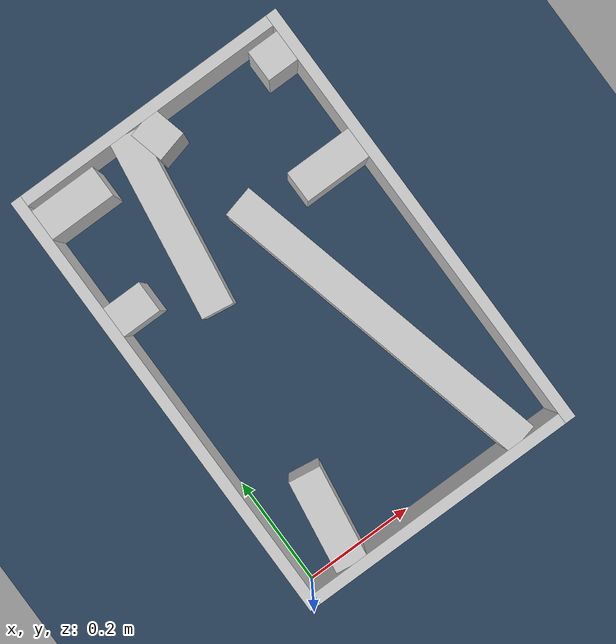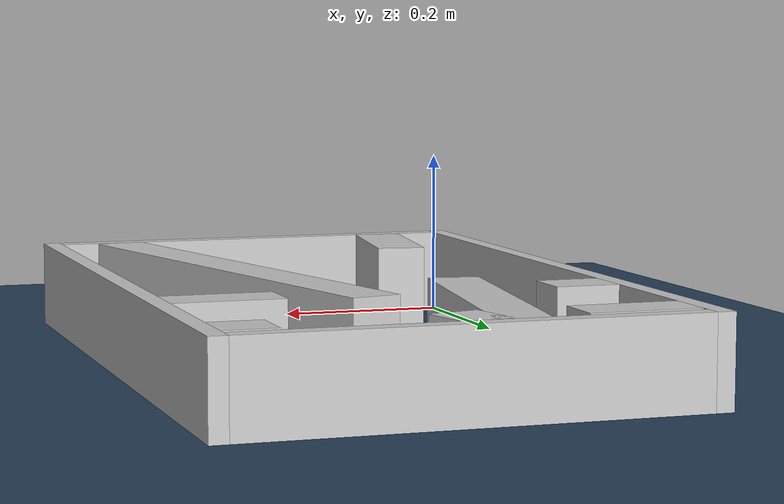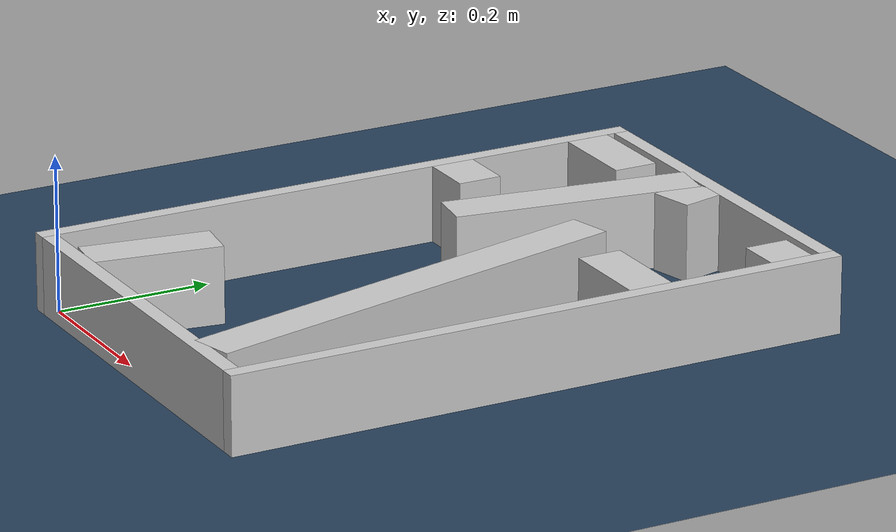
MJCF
<?xml version="1.0" ?>
<mujoco model="generated_real_template">
  <compiler angle="degree"/>
  <option timestep="0.002" integrator="implicitfast" iterations="100" cone="elliptic"/>
  <default>
    <geom density="1"/>
  </default>
  <asset>
    <texture builtin="gradient" height="3072" rgb1="0.3 0.5 0.7" rgb2="0 0 0" type="skybox" width="512"/>
    <texture builtin="checker" height="300" mark="edge" markrgb="0.8 0.8 0.8" name="groundplane" rgb1="0.2 0.3 0.4" rgb2="0.1 0.2 0.3" type="2d" width="300"/>
    <material name="groundplane" reflectance="0.2" texrepeat="5 5" texture="groundplane" texuniform="true"/>
  </asset>
  <worldbody>
    <light dir="0 0 -1" directional="true" pos="0 0 1.5"/>
    <geom name="floor" type="plane" condim="4" friction="0.5 0.005 0.001" material="groundplane" size="0 0 0.05"/>
    <body name="walls">
      <geom name="wall_boundary_left" type="box" condim="4" friction="1.0 0.005 0.0001" rgba="0.8 0.8 0.8 1" pos="-0.010000 0.387500 0.050000" euler="0 0 0.000000" size="0.010000 0.407500 0.050000"/>
      <geom name="wall_boundary_right" type="box" condim="4" friction="1.0 0.005 0.0001" rgba="0.8 0.8 0.8 1" pos="0.500000 0.387500 0.050000" euler="0 0 0.000000" size="0.010000 0.407500 0.050000"/>
      <geom name="wall_boundary_bottom" type="box" condim="4" friction="1.0 0.005 0.0001" rgba="0.8 0.8 0.8 1" pos="0.245000 -0.010000 0.050000" euler="0 0 0.000000" size="0.245000 0.010000 0.050000"/>
      <geom name="wall_boundary_top" type="box" condim="4" friction="1.0 0.005 0.0001" rgba="0.8 0.8 0.8 1" pos="0.245000 0.785000 0.050000" euler="0 0 0.000000" size="0.245000 0.010000 0.050000"/>
      <geom name="wall_inner_1_1" type="box" condim="4" friction="1.0 0.005 0.0001" rgba="0.8 0.8 0.8 1" pos="0.236492 0.744721 0.050000" euler="0 0 -76.255126" size="0.031172 0.028500 0.050000"/>
      <geom name="wall_inner_1_2" type="box" condim="4" friction="1.0 0.005 0.0001" rgba="0.8 0.8 0.8 1" pos="0.347532 0.290762 0.050000" euler="0 0 -76.255126" size="0.299334 0.028500 0.050000"/>
      <geom name="wall_inner_2_1" type="box" condim="4" friction="1.0 0.005 0.0001" rgba="0.8 0.8 0.8 1" pos="0.169736 0.616301 0.050000" euler="0 0 -98.462213" size="0.160445 0.028500 0.050000"/>
      <geom name="wall_inner_2_2" type="box" condim="4" friction="1.0 0.005 0.0001" rgba="0.8 0.8 0.8 1" pos="0.090223 0.081861 0.050000" euler="0 0 -98.462213" size="0.082762 0.028500 0.050000"/>
      <geom name="wall_inner_3_1" type="box" condim="4" friction="1.0 0.005 0.0001" rgba="0.8 0.8 0.8 1" pos="0.060643 0.736213 0.050000" euler="0 0 0.000000" size="0.060643 0.028500 0.050000"/>
      <geom name="wall_inner_3_2" type="box" condim="4" friction="1.0 0.005 0.0001" rgba="0.8 0.8 0.8 1" pos="0.461111 0.736213 0.050000" euler="0 0 0.000000" size="0.028889 0.028500 0.050000"/>
      <geom name="wall_inner_4_1" type="box" condim="4" friction="1.0 0.005 0.0001" rgba="0.8 0.8 0.8 1" pos="0.035828 0.542175 0.050000" euler="0 0 0.000000" size="0.035828 0.028500 0.050000"/>
      <geom name="wall_inner_4_2" type="box" condim="4" friction="1.0 0.005 0.0001" rgba="0.8 0.8 0.8 1" pos="0.428915 0.542175 0.050000" euler="0 0 0.000000" size="0.061085 0.028500 0.050000"/>
    </body>
  </worldbody>
</mujoco>
